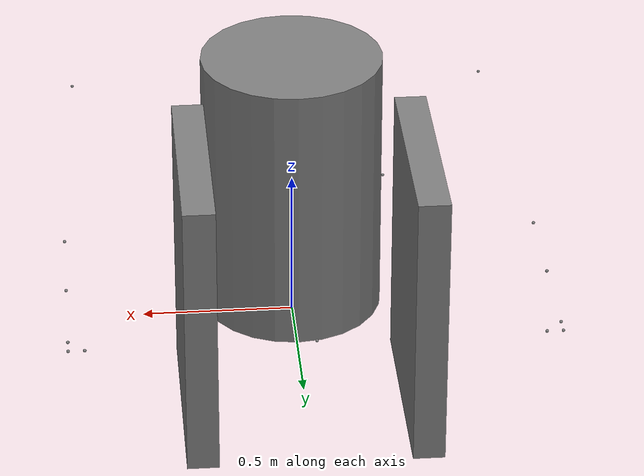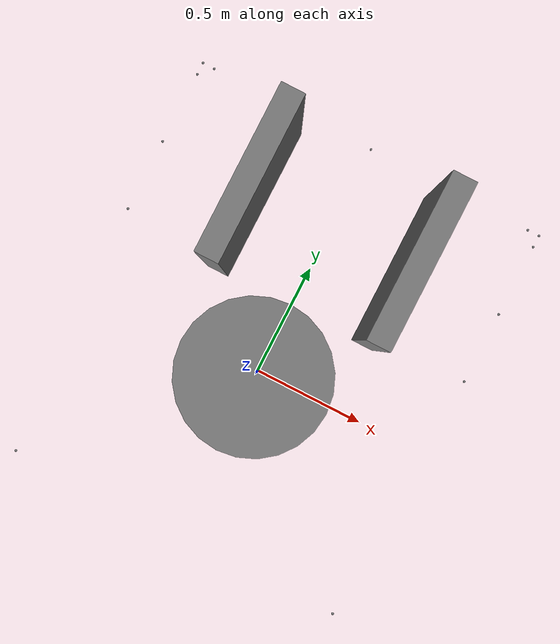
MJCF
<mujoco model="pr2_model">
    <worldbody name="base">
        <body name="pr2" pos="0 0 0.5">
            <joint axis="1 0 0" name="robot_x" type="slide" pos="0 0 0" armature="0.02"/>
            <joint axis="0 1 0" name="robot_y" type="slide" pos="0 0 0" armature="0.02"/>
            <joint axis="0 0 1" name="robot_theta" type="hinge" pos="0 0 0" armature="0.01" limited="true" range="-3.15 3.15"/>
            <geom name="pr2" type="cylinder" size="0.295 0.45" mass="5"/>
            <site name="body_1" pos="0 -0.3 0" zaxis="-1 0 0" />
            <site name="body_2" pos="0.3 0 0" zaxis="0 1 0" />
            <site name="body_3" pos="-0.3 0 0" zaxis="0 -1 0" />
            <site name="body_4" pos="0 -0.3 0" zaxis="-1 0 0" />
            <site name="body_5" pos="0.707 -0.707 0" zaxis="1 -1 0"/>
            <site name="body_6" pos="-0.707 -0.707 0" zaxis="-1 -1 0"/>
            <site name="body_7" pos="0 1.0 0" zaxis="0 1 0"/>
            <body name="right_finger" pos="-0.35 0.65 0" euler="0 0 -0.05">
                <site name="rf_1" pos="-0.4 0.3 0" zaxis="-1 0 0"/>
                <site name="rf_2" pos="-0.4 0 0" zaxis="-1 0 0"/>
                <site name="rf_3" pos="-0.4 -0.3 0" zaxis="-1 -0 0"/>
                <site name="rf_4" pos="-0.35 0.35 0" zaxis="0 1 0"/>
                <site name="rf_5" pos="-0.4 0.35 0" zaxis="-1 1 0"/>
                <joint name="right_finger_joint" axis="1 0 0" limited="true" range="-0.1 0.1" type="slide" solreflimit="0.02 0.95" solimplimit="0.99 1. 0.0001" armature="0." pos="0 0 0" />
                <geom pos="0 0 0" size="0.05 0.345 0.45" type="box" mass="0.5" friction="1.9 0.95 0.0005" />
            </body>
            <body name="left_finger" pos="0.35 0.65 0" euler="0 0 0.05">
                <site name="lf_1" pos="0.4 0.3 0" zaxis="1 0 0"/>
                <site name="lf_2" pos="0.4 0 0" zaxis="1 0 0"/>
                <site name="lf_3" pos="0.4 -0.3 0" zaxis="1 0 0"/>
                <site name="lf_4" pos="0.35 0.35 0" zaxis="0 1 0"/>
                <site name="lf_5" pos="0.4 0.35 0" zaxis="1 1 0"/>
                <joint name="left_finger_joint" axis="-1 0 0" limited="true" range="-0.1 0.1" type="slide" solreflimit="0.02 0.95" solimplimit="0.99 1. 0.0001" armature="0." pos="0 0 0" />
                <geom pos="0 0 0" size="0.05 0.345 0.45" type="box" mass="0.5" friction="1.9 0.95 0.0005" />
            </body>
        </body>
    </worldbody>

    <actuator>
        <velocity kv="500" joint="robot_x" name="robot_x" ctrllimited="true" ctrlrange="-20 20" />
        <velocity kv="500" joint="robot_y" name="robot_y" ctrllimited="true" ctrlrange="-20 20" />
        <velocity kv="100" joint="robot_theta" name="robot_theta" ctrllimited="true" ctrlrange="-20 20" />
        <motor gear="25" joint="left_finger_joint" name="left_grip" ctrllimited="true" ctrlrange="-5000 5000" />
        <motor gear="25" joint="right_finger_joint" name="right_grip" ctrllimited="true" ctrlrange="-5000 5000" />
    </actuator>
</mujoco>
